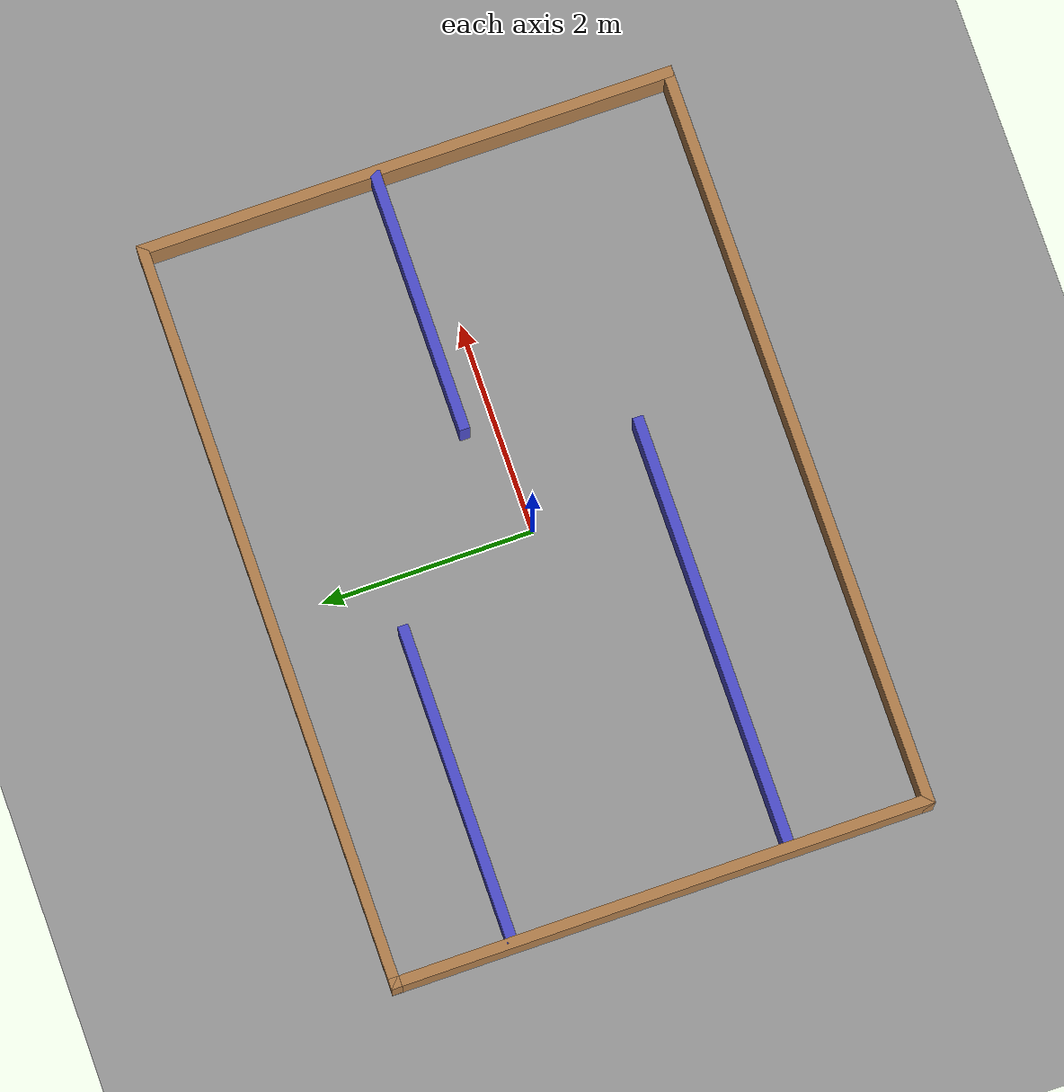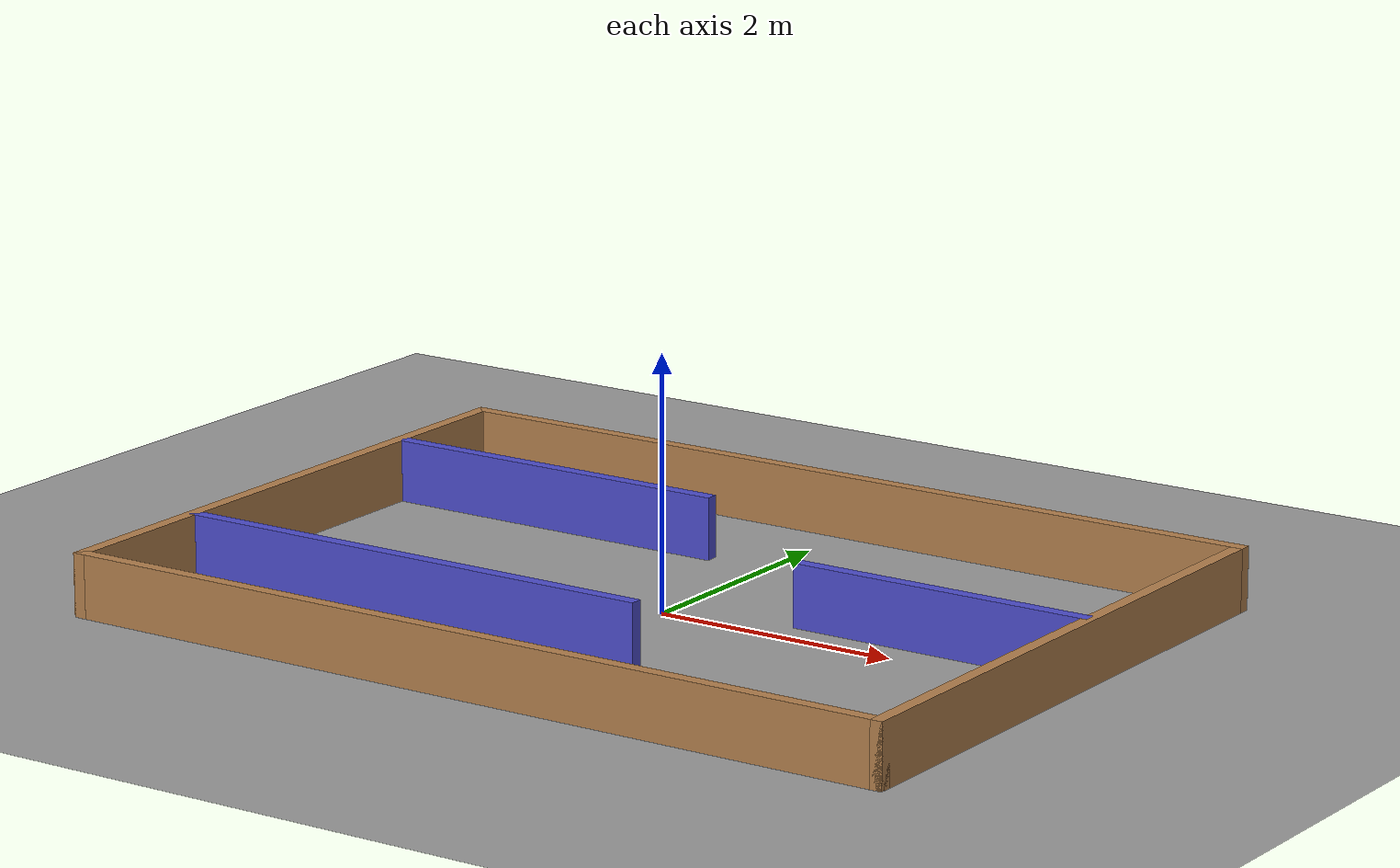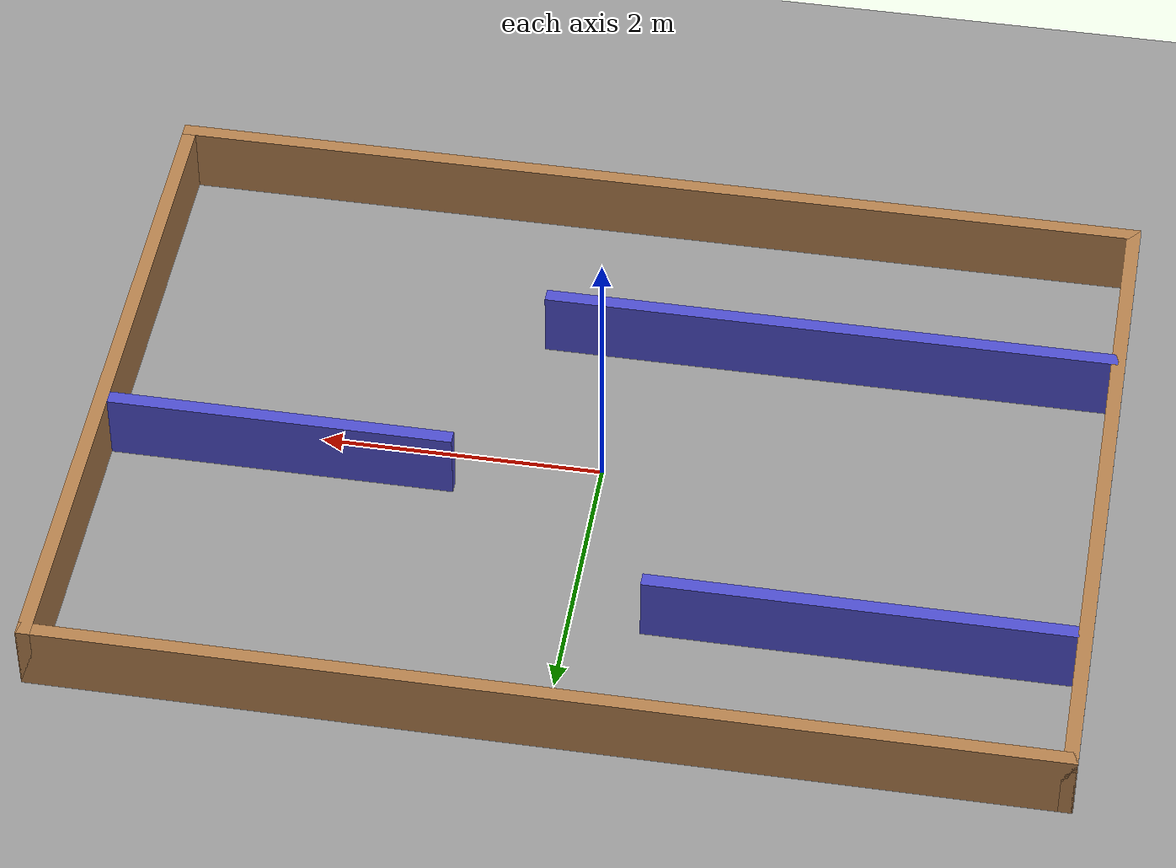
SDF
<?xml version="1.0" ?>
<sdf version="1.9">
  <world name="atlas_maze">

    <gui fullscreen="0">
      <plugin filename="MinimalScene" name="3D View">
        <gz-gui>
          <title>3D View</title>
          <property type="bool" key="showTitleBar">false</property>
          <property type="string" key="state">docked</property>
        </gz-gui>
        <engine>ogre2</engine>
        <scene>scene</scene>
        <ambient_light>0.4 0.4 0.4</ambient_light>
        <background_color>0.8 0.8 0.8</background_color>
        <camera_pose>-6 0 6 0 0.5 0</camera_pose>
      </plugin>
      <plugin filename="EntityContextMenuPlugin" name="Entity context menu">
        <gz-gui>
          <property key="state" type="string">floating</property>
          <property key="width" type="double">5</property>
          <property key="height" type="double">5</property>
          <property key="showTitleBar" type="bool">false</property>
        </gz-gui>
      </plugin>
      <plugin filename="GzSceneManager" name="Scene Manager">
        <gz-gui>
          <property key="resizable" type="bool">false</property>
          <property key="width" type="double">5</property>
          <property key="height" type="double">5</property>
          <property key="state" type="string">floating</property>
          <property key="showTitleBar" type="bool">false</property>
        </gz-gui>
      </plugin>
      <plugin filename="InteractiveViewControl" name="Interactive view control">
        <gz-gui>
          <property key="resizable" type="bool">false</property>
          <property key="width" type="double">5</property>
          <property key="height" type="double">5</property>
          <property key="state" type="string">floating</property>
          <property key="showTitleBar" type="bool">false</property>
        </gz-gui>
      </plugin>
      <plugin filename="CameraTracking" name="Camera Tracking">
        <gz-gui>
          <property key="resizable" type="bool">false</property>
          <property key="width" type="double">5</property>
          <property key="height" type="double">5</property>
          <property key="state" type="string">floating</property>
          <property key="showTitleBar" type="bool">false</property>
        </gz-gui>
      </plugin>
      <plugin filename="WorldControl" name="World control">
        <gz-gui>
          <title>World control</title>
          <property type="bool" key="showTitleBar">false</property>
          <property type="bool" key="resizable">false</property>
          <property type="double" key="height">72</property>
          <property type="double" key="width">121</property>
          <property type="double" key="z">1</property>
          <property type="string" key="state">floating</property>
          <anchors target="3D View">
            <line own="left" target="left"/>
            <line own="bottom" target="bottom"/>
          </anchors>
        </gz-gui>
        <play_pause>true</play_pause>
        <step>true</step>
        <use_event>true</use_event>
      </plugin>
      <plugin filename="WorldStats" name="World stats">
        <gz-gui>
          <title>World stats</title>
          <property type="bool" key="showTitleBar">false</property>
          <property type="bool" key="resizable">false</property>
          <property type="double" key="height">110</property>
          <property type="double" key="width">290</property>
          <property type="double" key="z">1</property>
          <property type="string" key="state">floating</property>
          <anchors target="3D View">
            <line own="right" target="right"/>
            <line own="bottom" target="bottom"/>
          </anchors>
        </gz-gui>
        <sim_time>true</sim_time>
        <real_time>true</real_time>
        <real_time_factor>true</real_time_factor>
        <iterations>true</iterations>
      </plugin>
      <plugin filename="EntityTree" name="Entity tree">
        <gz-gui>
          <property type="string" key="state">docked</property>
        </gz-gui>
      </plugin>
      <!-- Panel vẽ tia laser lên scene 3D cho mọi sensor lidar/gpu_lidar trong world -->
      <plugin filename="VisualizeLidar" name="Visualize Lidar"/>
    </gui>

    <plugin filename="gz-sim-physics-system" name="gz::sim::systems::Physics"/>
    <plugin filename="gz-sim-user-commands-system" name="gz::sim::systems::UserCommands"/>
    <plugin filename="gz-sim-scene-broadcaster-system" name="gz::sim::systems::SceneBroadcaster"/>
    <plugin filename="gz-sim-contact-system" name="gz::sim::systems::Contact"/>
    <plugin filename="gz-sim-imu-system" name="gz::sim::systems::Imu"/>
    <plugin filename="gz-sim-sensors-system" name="gz::sim::systems::Sensors">
      <render_engine>ogre2</render_engine>
    </plugin>

    <physics name="1ms" type="dartsim">
      <max_step_size>0.001</max_step_size>
      <real_time_factor>1.0</real_time_factor>
      <dart>
        <collision_detector>bullet</collision_detector>
      </dart>
    </physics>

    <light type="directional" name="sun">
      <cast_shadows>true</cast_shadows>
      <pose>0 0 10 0 0 0</pose>
      <diffuse>0.8 0.8 0.8 1</diffuse>
      <specular>0.2 0.2 0.2 1</specular>
      <attenuation>
        <range>1000</range>
        <constant>0.9</constant>
        <linear>0.01</linear>
        <quadratic>0.001</quadratic>
      </attenuation>
      <direction>-0.5 0.1 -0.9</direction>
    </light>

    <model name="ground_plane">
      <static>true</static>
      <link name="link">
        <collision name="collision">
          <geometry>
            <plane>
              <normal>0 0 1</normal>
              <size>100 100</size>
            </plane>
          </geometry>
          <surface>
            <friction>
              <ode>
                <mu>1.0</mu>
                <mu2>1.0</mu2>
              </ode>
            </friction>
          </surface>
        </collision>
        <visual name="visual">
          <geometry>
            <plane>
              <normal>0 0 1</normal>
              <size>100 100</size>
            </plane>
          </geometry>
          <material>
            <ambient>0.6 0.6 0.6 1</ambient>
            <diffuse>0.6 0.6 0.6 1</diffuse>
            <specular>0.2 0.2 0.2 1</specular>
          </material>
        </visual>
      </link>
    </model>

    <model name="maze_wall_north">
      <static>true</static>
      <pose>0 2.5 0.25 0 0 0</pose>
      <link name="link">
        <collision name="collision">
          <geometry><box><size>7.1 0.1 0.5</size></box></geometry>
          <surface>
            <friction>
              <ode>
                <mu>1.0</mu>
                <mu2>1.0</mu2>
              </ode>
            </friction>
            <contact>
              <ode>
                <min_depth>0.001</min_depth>
                <max_vel>2.0</max_vel>
              </ode>
            </contact>
          </surface>
        </collision>
        <visual name="visual">
          <geometry><box><size>7.1 0.1 0.5</size></box></geometry>
          <material><ambient>0.7 0.5 0.3 1</ambient><diffuse>0.7 0.5 0.3 1</diffuse></material>
        </visual>
      </link>
    </model>

    <model name="maze_wall_south">
      <static>true</static>
      <pose>0 -2.5 0.25 0 0 0</pose>
      <link name="link">
        <collision name="collision">
          <geometry><box><size>7.1 0.1 0.5</size></box></geometry>
          <surface>
            <friction>
              <ode>
                <mu>1.0</mu>
                <mu2>1.0</mu2>
              </ode>
            </friction>
            <contact>
              <ode>
                <min_depth>0.001</min_depth>
                <max_vel>2.0</max_vel>
              </ode>
            </contact>
          </surface>
        </collision>
        <visual name="visual">
          <geometry><box><size>7.1 0.1 0.5</size></box></geometry>
          <material><ambient>0.7 0.5 0.3 1</ambient><diffuse>0.7 0.5 0.3 1</diffuse></material>
        </visual>
      </link>
    </model>

    <model name="maze_wall_east">
      <static>true</static>
      <pose>3.5 0 0.25 0 0 0</pose>
      <link name="link">
        <collision name="collision">
          <geometry><box><size>0.1 5.1 0.5</size></box></geometry>
          <surface>
            <friction>
              <ode>
                <mu>1.0</mu>
                <mu2>1.0</mu2>
              </ode>
            </friction>
            <contact>
              <ode>
                <min_depth>0.001</min_depth>
                <max_vel>2.0</max_vel>
              </ode>
            </contact>
          </surface>
        </collision>
        <visual name="visual">
          <geometry><box><size>0.1 5.1 0.5</size></box></geometry>
          <material><ambient>0.7 0.5 0.3 1</ambient><diffuse>0.7 0.5 0.3 1</diffuse></material>
        </visual>
      </link>
    </model>

    <model name="maze_wall_west">
      <static>true</static>
      <pose>-3.5 0 0.25 0 0 0</pose>
      <link name="link">
        <collision name="collision">
          <geometry><box><size>0.1 5.1 0.5</size></box></geometry>
          <surface>
            <friction>
              <ode>
                <mu>1.0</mu>
                <mu2>1.0</mu2>
              </ode>
            </friction>
            <contact>
              <ode>
                <min_depth>0.001</min_depth>
                <max_vel>2.0</max_vel>
              </ode>
            </contact>
          </surface>
        </collision>
        <visual name="visual">
          <geometry><box><size>0.1 5.1 0.5</size></box></geometry>
          <material><ambient>0.7 0.5 0.3 1</ambient><diffuse>0.7 0.5 0.3 1</diffuse></material>
        </visual>
      </link>
    </model>

    <!-- Vách A: dài 3.0m, y=1.4, chắn x từ -3.5 đến -0.5, chừa lối đi bên PHẢI (x>-0.5) -->
    <model name="maze_wall_a">
      <static>true</static>
      <pose>-2.0 1.4 0.25 0 0 0</pose>
      <link name="link">
        <collision name="collision">
          <geometry><box><size>3.0 0.1 0.5</size></box></geometry>
          <surface>
            <friction>
              <ode>
                <mu>1.0</mu>
                <mu2>1.0</mu2>
              </ode>
            </friction>
            <contact>
              <ode>
                <min_depth>0.001</min_depth>
                <max_vel>2.0</max_vel>
              </ode>
            </contact>
          </surface>
        </collision>
        <visual name="visual">
          <geometry><box><size>3.0 0.1 0.5</size></box></geometry>
          <material><ambient>0.3 0.3 0.8 1</ambient><diffuse>0.3 0.3 0.8 1</diffuse></material>
        </visual>
      </link>
    </model>

    <!-- Vách B: dài 2.5m, y=0.3, chắn x từ 1.0 đến 3.5, chừa lối đi bên TRÁI (x<1.0) -->
    <model name="maze_wall_b">
      <static>true</static>
      <pose>2.25 0.3 0.25 0 0 0</pose>
      <link name="link">
        <collision name="collision">
          <geometry><box><size>2.5 0.1 0.5</size></box></geometry>
          <surface>
            <friction>
              <ode>
                <mu>1.0</mu>
                <mu2>1.0</mu2>
              </ode>
            </friction>
            <contact>
              <ode>
                <min_depth>0.001</min_depth>
                <max_vel>2.0</max_vel>
              </ode>
            </contact>
          </surface>
        </collision>
        <visual name="visual">
          <geometry><box><size>2.5 0.1 0.5</size></box></geometry>
          <material><ambient>0.3 0.3 0.8 1</ambient><diffuse>0.3 0.3 0.8 1</diffuse></material>
        </visual>
      </link>
    </model>

    <!-- Vách C: dài 4.1m, y=-1.2, chắn x từ -3.5 đến 0.6, chừa lối đi bên PHẢI (x>0.6) -->
    <model name="maze_wall_c">
      <static>true</static>
      <pose>-1.45 -1.2 0.25 0 0 0</pose>
      <link name="link">
        <collision name="collision">
          <geometry><box><size>4.1 0.1 0.5</size></box></geometry>
          <surface>
            <friction>
              <ode>
                <mu>1.0</mu>
                <mu2>1.0</mu2>
              </ode>
            </friction>
            <contact>
              <ode>
                <min_depth>0.001</min_depth>
                <max_vel>2.0</max_vel>
              </ode>
            </contact>
          </surface>
        </collision>
        <visual name="visual">
          <geometry><box><size>4.1 0.1 0.5</size></box></geometry>
          <material><ambient>0.3 0.3 0.8 1</ambient><diffuse>0.3 0.3 0.8 1</diffuse></material>
        </visual>
      </link>
    </model>

  </world>
</sdf>
